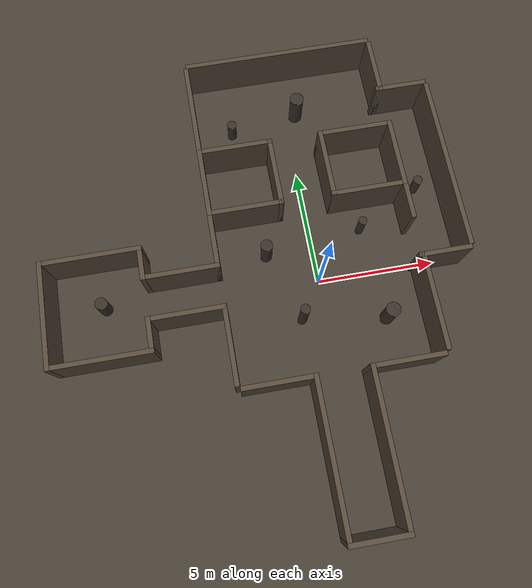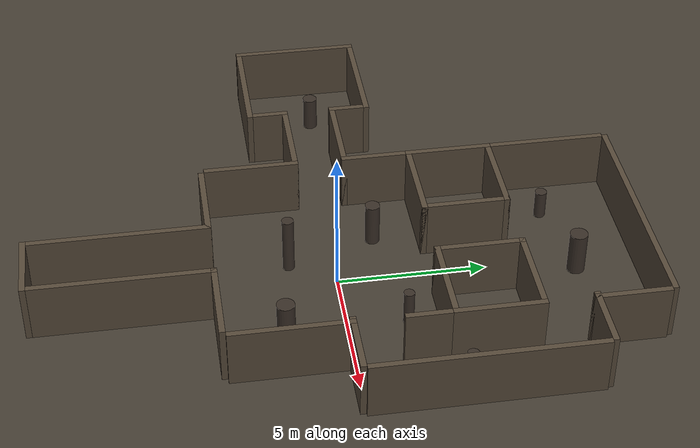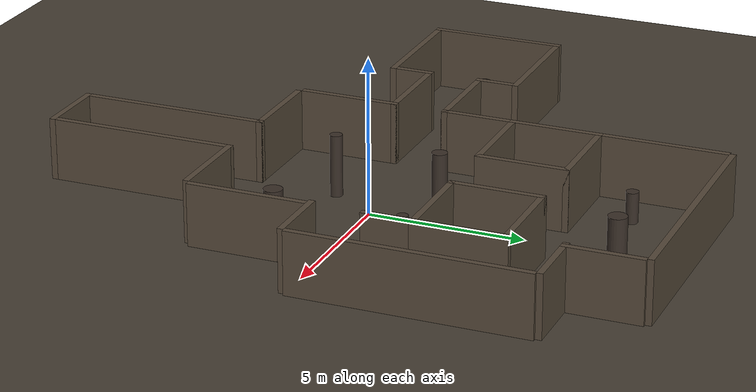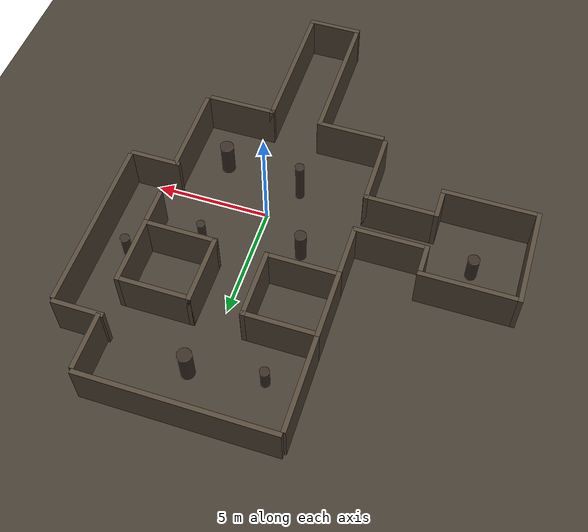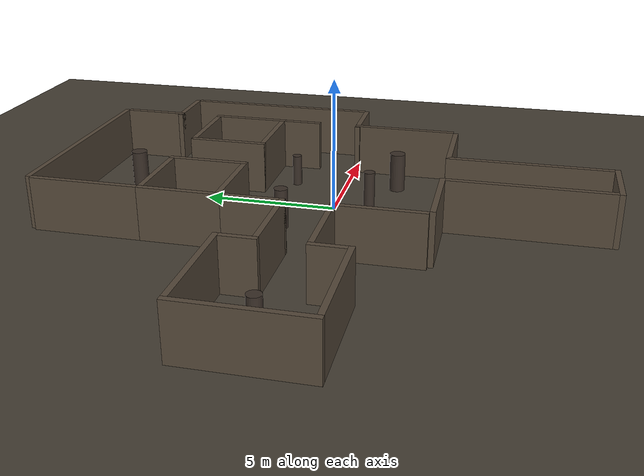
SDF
<?xml version="1.0"?>
<sdf version="1.8">
  <world name="cave">

    <!-- ── Scene: very low ambient simulates cave darkness ───────────── -->
    <scene>
      <ambient>0.08 0.07 0.06 1</ambient>
      <background>0.02 0.02 0.02 1</background>
      <shadows>true</shadows>
    </scene>

    <!-- ── Physics ───────────────────────────────────────────────────── -->
    <physics name="1ms" type="ignored">
      <max_step_size>0.001</max_step_size>
      <real_time_update_rate>1000</real_time_update_rate>
      <real_time_factor>1.0</real_time_factor>
    </physics>

    <!-- ── Required world systems ────────────────────────────────────── -->
    <plugin filename="gz-sim-physics-system"
            name="gz::sim::systems::Physics"/>
    <plugin filename="gz-sim-user-commands-system"
            name="gz::sim::systems::UserCommands"/>
    <plugin filename="gz-sim-scene-broadcaster-system"
            name="gz::sim::systems::SceneBroadcaster"/>
    <plugin filename="gz-sim-contact-system"
            name="gz::sim::systems::Contact"/>
    <plugin filename="gz-sim-sensors-system"
            name="gz::sim::systems::Sensors">
      <render_engine>ogre2</render_engine>
    </plugin>
    <plugin filename="gz-sim-imu-system"
            name="gz::sim::systems::Imu"/>

    <!-- ── Point lights (warm torch-like glow per chamber) ───────────── -->
    <light type="point" name="light_hub">
      <pose>0 0 1.8 0 0 0</pose>
      <diffuse>0.85 0.70 0.50 1</diffuse>
      <specular>0.10 0.08 0.05 1</specular>
      <attenuation>
        <range>9.0</range>
        <constant>0.30</constant>
        <linear>0.08</linear>
        <quadratic>0.02</quadratic>
      </attenuation>
      <cast_shadows>false</cast_shadows>
    </light>

    <light type="point" name="light_north">
      <pose>0 8 1.8 0 0 0</pose>
      <diffuse>0.80 0.70 0.55 1</diffuse>
      <specular>0.08 0.07 0.05 1</specular>
      <attenuation>
        <range>7.0</range>
        <constant>0.35</constant>
        <linear>0.10</linear>
        <quadratic>0.03</quadratic>
      </attenuation>
      <cast_shadows>false</cast_shadows>
    </light>

    <light type="point" name="light_west">
      <pose>-9 0 1.8 0 0 0</pose>
      <diffuse>0.80 0.70 0.55 1</diffuse>
      <specular>0.08 0.07 0.05 1</specular>
      <attenuation>
        <range>6.0</range>
        <constant>0.35</constant>
        <linear>0.10</linear>
        <quadratic>0.03</quadratic>
      </attenuation>
      <cast_shadows>false</cast_shadows>
    </light>

    <light type="point" name="light_east_corr">
      <pose>5 3.5 1.8 0 0 0</pose>
      <diffuse>0.75 0.65 0.50 1</diffuse>
      <specular>0.07 0.06 0.04 1</specular>
      <attenuation>
        <range>6.0</range>
        <constant>0.40</constant>
        <linear>0.12</linear>
        <quadratic>0.04</quadratic>
      </attenuation>
      <cast_shadows>false</cast_shadows>
    </light>

    <!-- ── Ground ────────────────────────────────────────────────────── -->
    <model name="ground_plane">
      <static>true</static>
      <link name="link">
        <collision name="collision">
          <geometry>
            <plane><normal>0 0 1</normal><size>100 100</size></plane>
          </geometry>
          <surface>
            <friction><ode><mu>0.8</mu><mu2>0.8</mu2></ode></friction>
          </surface>
        </collision>
        <visual name="visual">
          <geometry>
            <plane><normal>0 0 1</normal><size>100 100</size></plane>
          </geometry>
          <material>
            <ambient>0.22 0.20 0.17 1</ambient>
            <diffuse>0.27 0.24 0.20 1</diffuse>
            <specular>0.04 0.04 0.04 1</specular>
          </material>
        </visual>
      </link>
    </model>

    <!-- ── Entry tunnel ──────────────────────────────────────────────── -->
    <model name="entry_wall_e">
      <static>true</static><pose>1.1 -7.0 1.0 0 0 0</pose>
      <link name="link">
        <collision name="col"><geometry><box><size>0.2 6.0 2.0</size></box></geometry></collision>
        <visual name="vis"><geometry><box><size>0.2 6.0 2.0</size></box></geometry>
          <material><ambient>0.28 0.24 0.20 1</ambient><diffuse>0.33 0.28 0.22 1</diffuse></material></visual>
      </link>
    </model>

    <model name="entry_wall_w">
      <static>true</static><pose>-1.1 -7.0 1.0 0 0 0</pose>
      <link name="link">
        <collision name="col"><geometry><box><size>0.2 6.0 2.0</size></box></geometry></collision>
        <visual name="vis"><geometry><box><size>0.2 6.0 2.0</size></box></geometry>
          <material><ambient>0.28 0.24 0.20 1</ambient><diffuse>0.33 0.28 0.22 1</diffuse></material></visual>
      </link>
    </model>

    <model name="entry_cap_s">
      <static>true</static><pose>0.0 -10.1 1.0 0 0 0</pose>
      <link name="link">
        <collision name="col"><geometry><box><size>2.4 0.2 2.0</size></box></geometry></collision>
        <visual name="vis"><geometry><box><size>2.4 0.2 2.0</size></box></geometry>
          <material><ambient>0.28 0.24 0.20 1</ambient><diffuse>0.33 0.28 0.22 1</diffuse></material></visual>
      </link>
    </model>

    <!-- ── Main hub south wall  (gap x∈[-1, 1]) ─────────────────────── -->
    <model name="hub_s_w">
      <static>true</static><pose>-2.5 -4.1 1.0 0 0 0</pose>
      <link name="link">
        <collision name="col"><geometry><box><size>3.0 0.2 2.0</size></box></geometry></collision>
        <visual name="vis"><geometry><box><size>3.0 0.2 2.0</size></box></geometry>
          <material><ambient>0.28 0.24 0.20 1</ambient><diffuse>0.33 0.28 0.22 1</diffuse></material></visual>
      </link>
    </model>

    <model name="hub_s_e">
      <static>true</static><pose>2.5 -4.1 1.0 0 0 0</pose>
      <link name="link">
        <collision name="col"><geometry><box><size>3.0 0.2 2.0</size></box></geometry></collision>
        <visual name="vis"><geometry><box><size>3.0 0.2 2.0</size></box></geometry>
          <material><ambient>0.28 0.24 0.20 1</ambient><diffuse>0.33 0.28 0.22 1</diffuse></material></visual>
      </link>
    </model>

    <!-- ── Main hub north wall  (gap x∈[-1, 1]) ─────────────────────── -->
    <model name="hub_n_w">
      <static>true</static><pose>-2.5 3.1 1.0 0 0 0</pose>
      <link name="link">
        <collision name="col"><geometry><box><size>3.0 0.2 2.0</size></box></geometry></collision>
        <visual name="vis"><geometry><box><size>3.0 0.2 2.0</size></box></geometry>
          <material><ambient>0.28 0.24 0.20 1</ambient><diffuse>0.33 0.28 0.22 1</diffuse></material></visual>
      </link>
    </model>

    <model name="hub_n_e">
      <static>true</static><pose>2.5 3.1 1.0 0 0 0</pose>
      <link name="link">
        <collision name="col"><geometry><box><size>3.0 0.2 2.0</size></box></geometry></collision>
        <visual name="vis"><geometry><box><size>3.0 0.2 2.0</size></box></geometry>
          <material><ambient>0.28 0.24 0.20 1</ambient><diffuse>0.33 0.28 0.22 1</diffuse></material></visual>
      </link>
    </model>

    <!-- ── Main hub west wall  (gap y∈[-0.75, 0.75]) ────────────────── -->
    <model name="hub_w_s">
      <static>true</static><pose>-4.1 -2.375 1.0 0 0 0</pose>
      <link name="link">
        <collision name="col"><geometry><box><size>0.2 3.25 2.0</size></box></geometry></collision>
        <visual name="vis"><geometry><box><size>0.2 3.25 2.0</size></box></geometry>
          <material><ambient>0.28 0.24 0.20 1</ambient><diffuse>0.33 0.28 0.22 1</diffuse></material></visual>
      </link>
    </model>

    <model name="hub_w_n">
      <static>true</static><pose>-4.1 1.875 1.0 0 0 0</pose>
      <link name="link">
        <collision name="col"><geometry><box><size>0.2 2.25 2.0</size></box></geometry></collision>
        <visual name="vis"><geometry><box><size>0.2 2.25 2.0</size></box></geometry>
          <material><ambient>0.28 0.24 0.20 1</ambient><diffuse>0.33 0.28 0.22 1</diffuse></material></visual>
      </link>
    </model>

    <!-- NW pocket closure: x=-4 from y=3 to y=6 (joins hub W wall to north room W wall) -->
    <model name="cave_nw_ext">
      <static>true</static><pose>-4.1 4.5 1.0 0 0 0</pose>
      <link name="link">
        <collision name="col"><geometry><box><size>0.2 3.0 2.0</size></box></geometry></collision>
        <visual name="vis"><geometry><box><size>0.2 3.0 2.0</size></box></geometry>
          <material><ambient>0.28 0.24 0.20 1</ambient><diffuse>0.33 0.28 0.22 1</diffuse></material></visual>
      </link>
    </model>

    <!-- ── Main hub east wall  (gap y∈[0, 1.5] → east corridor) ─────── -->
    <model name="hub_e_s">
      <static>true</static><pose>4.1 -2.0 1.0 0 0 0</pose>
      <link name="link">
        <collision name="col"><geometry><box><size>0.2 4.0 2.0</size></box></geometry></collision>
        <visual name="vis"><geometry><box><size>0.2 4.0 2.0</size></box></geometry>
          <material><ambient>0.28 0.24 0.20 1</ambient><diffuse>0.33 0.28 0.22 1</diffuse></material></visual>
      </link>
    </model>

    <model name="hub_e_n">
      <static>true</static><pose>4.1 2.25 1.0 0 0 0</pose>
      <link name="link">
        <collision name="col"><geometry><box><size>0.2 1.5 2.0</size></box></geometry></collision>
        <visual name="vis"><geometry><box><size>0.2 1.5 2.0</size></box></geometry>
          <material><ambient>0.28 0.24 0.20 1</ambient><diffuse>0.33 0.28 0.22 1</diffuse></material></visual>
      </link>
    </model>

    <!-- ── North corridor  (x∈[-1, 1], y∈[3, 6]) ────────────────────── -->
    <model name="n_corr_e">
      <static>true</static><pose>1.1 4.5 1.0 0 0 0</pose>
      <link name="link">
        <collision name="col"><geometry><box><size>0.2 3.0 2.0</size></box></geometry></collision>
        <visual name="vis"><geometry><box><size>0.2 3.0 2.0</size></box></geometry>
          <material><ambient>0.28 0.24 0.20 1</ambient><diffuse>0.33 0.28 0.22 1</diffuse></material></visual>
      </link>
    </model>

    <model name="n_corr_w">
      <static>true</static><pose>-1.1 4.5 1.0 0 0 0</pose>
      <link name="link">
        <collision name="col"><geometry><box><size>0.2 3.0 2.0</size></box></geometry></collision>
        <visual name="vis"><geometry><box><size>0.2 3.0 2.0</size></box></geometry>
          <material><ambient>0.28 0.24 0.20 1</ambient><diffuse>0.33 0.28 0.22 1</diffuse></material></visual>
      </link>
    </model>

    <!-- ── North room  (x∈[-4, 4], y∈[6, 10]) ───────────────────────── -->
    <!-- South wall: gap x∈[-1,1] for north corridor -->
    <model name="n_room_s_w">
      <static>true</static><pose>-2.5 5.9 1.0 0 0 0</pose>
      <link name="link">
        <collision name="col"><geometry><box><size>3.0 0.2 2.0</size></box></geometry></collision>
        <visual name="vis"><geometry><box><size>3.0 0.2 2.0</size></box></geometry>
          <material><ambient>0.28 0.24 0.20 1</ambient><diffuse>0.33 0.28 0.22 1</diffuse></material></visual>
      </link>
    </model>

    <model name="n_room_s_e">
      <static>true</static><pose>2.5 5.9 1.0 0 0 0</pose>
      <link name="link">
        <collision name="col"><geometry><box><size>3.0 0.2 2.0</size></box></geometry></collision>
        <visual name="vis"><geometry><box><size>3.0 0.2 2.0</size></box></geometry>
          <material><ambient>0.28 0.24 0.20 1</ambient><diffuse>0.33 0.28 0.22 1</diffuse></material></visual>
      </link>
    </model>

    <model name="n_room_n">
      <static>true</static><pose>0.0 10.1 1.0 0 0 0</pose>
      <link name="link">
        <collision name="col"><geometry><box><size>8.2 0.2 2.0</size></box></geometry></collision>
        <visual name="vis"><geometry><box><size>8.2 0.2 2.0</size></box></geometry>
          <material><ambient>0.28 0.24 0.20 1</ambient><diffuse>0.33 0.28 0.22 1</diffuse></material></visual>
      </link>
    </model>

    <model name="n_room_w">
      <static>true</static><pose>-4.1 8.0 1.0 0 0 0</pose>
      <link name="link">
        <collision name="col"><geometry><box><size>0.2 4.0 2.0</size></box></geometry></collision>
        <visual name="vis"><geometry><box><size>0.2 4.0 2.0</size></box></geometry>
          <material><ambient>0.28 0.24 0.20 1</ambient><diffuse>0.33 0.28 0.22 1</diffuse></material></visual>
      </link>
    </model>

    <!-- East wall of north room: gap y∈[6, 7.5] opens into east corridor (loop) -->
    <model name="n_room_e">
      <static>true</static><pose>4.1 8.75 1.0 0 0 0</pose>
      <link name="link">
        <collision name="col"><geometry><box><size>0.2 2.5 2.0</size></box></geometry></collision>
        <visual name="vis"><geometry><box><size>0.2 2.5 2.0</size></box></geometry>
          <material><ambient>0.28 0.24 0.20 1</ambient><diffuse>0.33 0.28 0.22 1</diffuse></material></visual>
      </link>
    </model>

    <!-- ── East corridor  (x∈[4,6], y∈[0,7.5])  — loop passage ─────── -->
    <!--   Entry: gap in hub east wall y∈[0,1.5]                         -->
    <!--   Exit:  gap in north room east wall y∈[6,7.5]                  -->
    <model name="east_corr_e">
      <static>true</static><pose>6.1 3.75 1.0 0 0 0</pose>
      <link name="link">
        <collision name="col"><geometry><box><size>0.2 7.5 2.0</size></box></geometry></collision>
        <visual name="vis"><geometry><box><size>0.2 7.5 2.0</size></box></geometry>
          <material><ambient>0.28 0.24 0.20 1</ambient><diffuse>0.33 0.28 0.22 1</diffuse></material></visual>
      </link>
    </model>

    <!-- West wall of east corridor between hub N wall and north room S wall (y∈[3,6]) -->
    <model name="east_corr_w">
      <static>true</static><pose>4.1 4.5 1.0 0 0 0</pose>
      <link name="link">
        <collision name="col"><geometry><box><size>0.2 3.0 2.0</size></box></geometry></collision>
        <visual name="vis"><geometry><box><size>0.2 3.0 2.0</size></box></geometry>
          <material><ambient>0.28 0.24 0.20 1</ambient><diffuse>0.33 0.28 0.22 1</diffuse></material></visual>
      </link>
    </model>

    <model name="east_corr_s">
      <static>true</static><pose>5.0 -0.1 1.0 0 0 0</pose>
      <link name="link">
        <collision name="col"><geometry><box><size>2.2 0.2 2.0</size></box></geometry></collision>
        <visual name="vis"><geometry><box><size>2.2 0.2 2.0</size></box></geometry>
          <material><ambient>0.28 0.24 0.20 1</ambient><diffuse>0.33 0.28 0.22 1</diffuse></material></visual>
      </link>
    </model>

    <model name="east_corr_n">
      <static>true</static><pose>5.0 7.6 1.0 0 0 0</pose>
      <link name="link">
        <collision name="col"><geometry><box><size>2.2 0.2 2.0</size></box></geometry></collision>
        <visual name="vis"><geometry><box><size>2.2 0.2 2.0</size></box></geometry>
          <material><ambient>0.28 0.24 0.20 1</ambient><diffuse>0.33 0.28 0.22 1</diffuse></material></visual>
      </link>
    </model>

    <!-- ── West corridor  (x∈[-4,-7], y∈[-0.75, 0.75]) ─────────────── -->
    <model name="w_corr_n">
      <static>true</static><pose>-5.5 0.85 1.0 0 0 0</pose>
      <link name="link">
        <collision name="col"><geometry><box><size>3.0 0.2 2.0</size></box></geometry></collision>
        <visual name="vis"><geometry><box><size>3.0 0.2 2.0</size></box></geometry>
          <material><ambient>0.28 0.24 0.20 1</ambient><diffuse>0.33 0.28 0.22 1</diffuse></material></visual>
      </link>
    </model>

    <model name="w_corr_s">
      <static>true</static><pose>-5.5 -0.85 1.0 0 0 0</pose>
      <link name="link">
        <collision name="col"><geometry><box><size>3.0 0.2 2.0</size></box></geometry></collision>
        <visual name="vis"><geometry><box><size>3.0 0.2 2.0</size></box></geometry>
          <material><ambient>0.28 0.24 0.20 1</ambient><diffuse>0.33 0.28 0.22 1</diffuse></material></visual>
      </link>
    </model>

    <!-- ── West room  (x∈[-7,-11], y∈[-2, 2])  — dead end ───────────── -->
    <model name="w_room_s">
      <static>true</static><pose>-9.0 -2.1 1.0 0 0 0</pose>
      <link name="link">
        <collision name="col"><geometry><box><size>4.0 0.2 2.0</size></box></geometry></collision>
        <visual name="vis"><geometry><box><size>4.0 0.2 2.0</size></box></geometry>
          <material><ambient>0.28 0.24 0.20 1</ambient><diffuse>0.33 0.28 0.22 1</diffuse></material></visual>
      </link>
    </model>

    <model name="w_room_n">
      <static>true</static><pose>-9.0 2.1 1.0 0 0 0</pose>
      <link name="link">
        <collision name="col"><geometry><box><size>4.0 0.2 2.0</size></box></geometry></collision>
        <visual name="vis"><geometry><box><size>4.0 0.2 2.0</size></box></geometry>
          <material><ambient>0.28 0.24 0.20 1</ambient><diffuse>0.33 0.28 0.22 1</diffuse></material></visual>
      </link>
    </model>

    <model name="w_room_w">
      <static>true</static><pose>-11.1 0.0 1.0 0 0 0</pose>
      <link name="link">
        <collision name="col"><geometry><box><size>0.2 4.4 2.0</size></box></geometry></collision>
        <visual name="vis"><geometry><box><size>0.2 4.4 2.0</size></box></geometry>
          <material><ambient>0.28 0.24 0.20 1</ambient><diffuse>0.33 0.28 0.22 1</diffuse></material></visual>
      </link>
    </model>

    <!-- East wall of west room: gap y∈[-0.75, 0.75] → west corridor -->
    <model name="w_room_e_s">
      <static>true</static><pose>-7.1 -1.375 1.0 0 0 0</pose>
      <link name="link">
        <collision name="col"><geometry><box><size>0.2 1.25 2.0</size></box></geometry></collision>
        <visual name="vis"><geometry><box><size>0.2 1.25 2.0</size></box></geometry>
          <material><ambient>0.28 0.24 0.20 1</ambient><diffuse>0.33 0.28 0.22 1</diffuse></material></visual>
      </link>
    </model>

    <model name="w_room_e_n">
      <static>true</static><pose>-7.1 1.375 1.0 0 0 0</pose>
      <link name="link">
        <collision name="col"><geometry><box><size>0.2 1.25 2.0</size></box></geometry></collision>
        <visual name="vis"><geometry><box><size>0.2 1.25 2.0</size></box></geometry>
          <material><ambient>0.28 0.24 0.20 1</ambient><diffuse>0.33 0.28 0.22 1</diffuse></material></visual>
      </link>
    </model>

    <model name="rock_hub_nw">
      <static>true</static><pose>-2.0 1.5 0.75 0 0 0</pose>
      <link name="link">
        <collision name="col"><geometry><cylinder><radius>0.25</radius><length>1.5</length></cylinder></geometry></collision>
        <visual name="vis"><geometry><cylinder><radius>0.25</radius><length>1.5</length></cylinder></geometry>
          <material><ambient>0.20 0.17 0.14 1</ambient><diffuse>0.22 0.18 0.15 1</diffuse></material></visual>
      </link>
    </model>

    <model name="rock_hub_se">
      <static>true</static><pose>2.5 -2.0 0.75 0 0 0</pose>
      <link name="link">
        <collision name="col"><geometry><cylinder><radius>0.30</radius><length>1.5</length></cylinder></geometry></collision>
        <visual name="vis"><geometry><cylinder><radius>0.30</radius><length>1.5</length></cylinder></geometry>
          <material><ambient>0.20 0.17 0.14 1</ambient><diffuse>0.22 0.18 0.15 1</diffuse></material></visual>
      </link>
    </model>

    <model name="rock_hub_c">
      <static>true</static><pose>-1.0 -1.5 1.0 0 0 0</pose>
      <link name="link">
        <collision name="col"><geometry><cylinder><radius>0.20</radius><length>2.0</length></cylinder></geometry></collision>
        <visual name="vis"><geometry><cylinder><radius>0.20</radius><length>2.0</length></cylinder></geometry>
          <material><ambient>0.20 0.17 0.14 1</ambient><diffuse>0.22 0.18 0.15 1</diffuse></material></visual>
      </link>
    </model>

    <model name="rock_hub_ne">
      <static>true</static><pose>2.2 2.0 0.6 0 0 0</pose>
      <link name="link">
        <collision name="col"><geometry><cylinder><radius>0.18</radius><length>1.2</length></cylinder></geometry></collision>
        <visual name="vis"><geometry><cylinder><radius>0.18</radius><length>1.2</length></cylinder></geometry>
          <material><ambient>0.20 0.17 0.14 1</ambient><diffuse>0.22 0.18 0.15 1</diffuse></material></visual>
      </link>
    </model>

    <model name="rock_north_1">
      <static>true</static><pose>0.5 8.0 0.75 0 0 0</pose>
      <link name="link">
        <collision name="col"><geometry><cylinder><radius>0.30</radius><length>1.5</length></cylinder></geometry></collision>
        <visual name="vis"><geometry><cylinder><radius>0.30</radius><length>1.5</length></cylinder></geometry>
          <material><ambient>0.20 0.17 0.14 1</ambient><diffuse>0.22 0.18 0.15 1</diffuse></material></visual>
      </link>
    </model>

    <model name="rock_north_2">
      <static>true</static><pose>-2.5 7.5 0.5 0 0 0</pose>
      <link name="link">
        <collision name="col"><geometry><cylinder><radius>0.20</radius><length>1.0</length></cylinder></geometry></collision>
        <visual name="vis"><geometry><cylinder><radius>0.20</radius><length>1.0</length></cylinder></geometry>
          <material><ambient>0.20 0.17 0.14 1</ambient><diffuse>0.22 0.18 0.15 1</diffuse></material></visual>
      </link>
    </model>

    <model name="rock_west">
      <static>true</static><pose>-9.0 0.3 0.6 0 0 0</pose>
      <link name="link">
        <collision name="col"><geometry><cylinder><radius>0.25</radius><length>1.2</length></cylinder></geometry></collision>
        <visual name="vis"><geometry><cylinder><radius>0.25</radius><length>1.2</length></cylinder></geometry>
          <material><ambient>0.20 0.17 0.14 1</ambient><diffuse>0.22 0.18 0.15 1</diffuse></material></visual>
      </link>
    </model>

    <model name="rock_ecorr">
      <static>true</static><pose>5.0 3.5 0.5 0 0 0</pose>
      <link name="link">
        <collision name="col"><geometry><cylinder><radius>0.20</radius><length>1.0</length></cylinder></geometry></collision>
        <visual name="vis"><geometry><cylinder><radius>0.20</radius><length>1.0</length></cylinder></geometry>
          <material><ambient>0.20 0.17 0.14 1</ambient><diffuse>0.22 0.18 0.15 1</diffuse></material></visual>
      </link>
    </model>

  </world>
</sdf>
